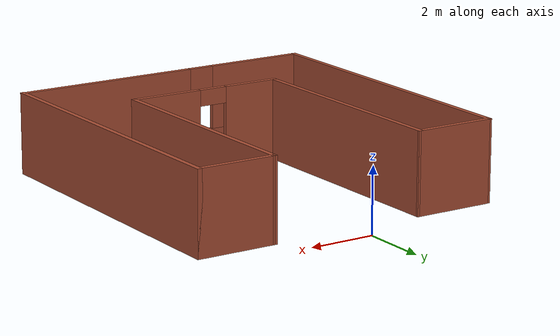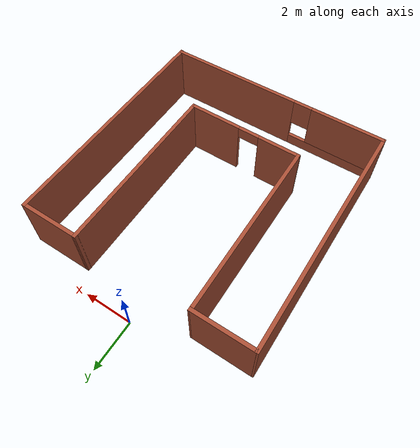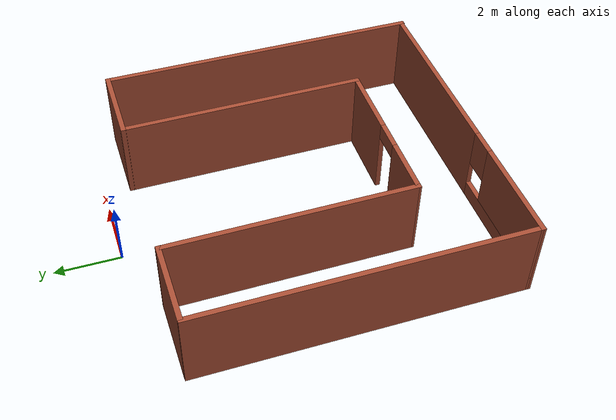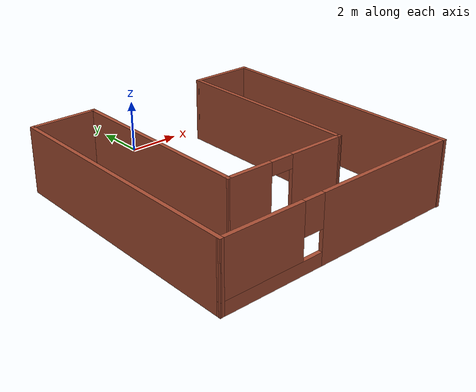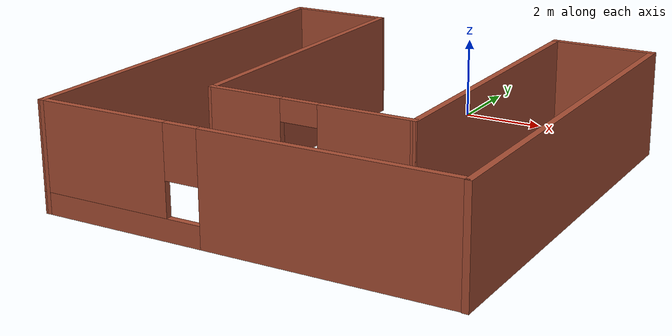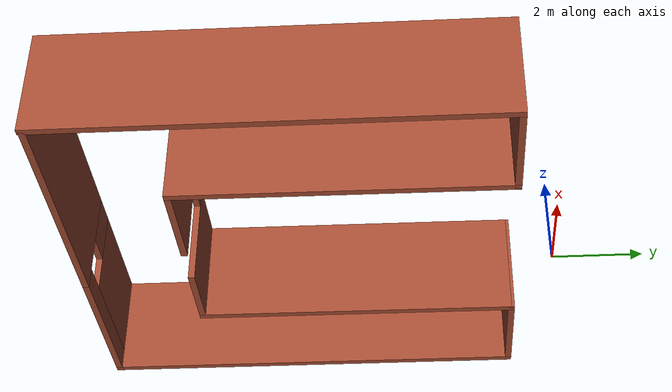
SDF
<?xml version='1.0'?>
<sdf version='1.6'>
  <model name='Building'>
    <pose frame=''>0.218497 -5.75038 0 0 -0 0</pose>
    <link name='Wall_0'>
      <collision name='Wall_0_Collision'>
        <geometry>
          <box>
            <size>2.5 0.15 2.5</size>
          </box>
        </geometry>
        <pose frame=''>0 0 1.25 0 -0 0</pose>
      </collision>
      <visual name='Wall_0_Visual'>
        <pose frame=''>0 0 1.25 0 -0 0</pose>
        <geometry>
          <box>
            <size>2.5 0.15 2.5</size>
          </box>
        </geometry>
        <material>
          <script>
            <uri>file://media/materials/scripts/gazebo.material</uri>
            <name>Gazebo/Bricks</name>
          </script>
          <ambient>1 1 1 1</ambient>
        </material>
        <meta>
          <layer>0</layer>
        </meta>
      </visual>
      <pose frame=''>-3.5735 4.94038 0 0 -0 0</pose>
    </link>
    <link name='Wall_1'>
      <collision name='Wall_1_Collision'>
        <geometry>
          <box>
            <size>7.5 0.15 2.5</size>
          </box>
        </geometry>
        <pose frame=''>0 0 1.25 0 -0 0</pose>
      </collision>
      <visual name='Wall_1_Visual'>
        <pose frame=''>0 0 1.25 0 -0 0</pose>
        <geometry>
          <box>
            <size>7.5 0.15 2.5</size>
          </box>
        </geometry>
        <material>
          <script>
            <uri>file://media/materials/scripts/gazebo.material</uri>
            <name>Gazebo/Bricks</name>
          </script>
          <ambient>0.760784 0.662745 0.627451 1</ambient>
        </material>
        <meta>
          <layer>0</layer>
        </meta>
      </visual>
      <pose frame=''>-2.3855 1.26538 0 0 0 -1.56726</pose>
    </link>
    <link name='Wall_16'>
      <pose frame=''>-0.028466 -4.91662 0 0 -0 3.14159</pose>
      <visual name='Wall_16_Visual_0'>
        <pose frame=''>-1.99596 0 1.25 0 -0 0</pose>
        <geometry>
          <box>
            <size>5.75809 0.15 2.5</size>
          </box>
        </geometry>
        <material>
          <script>
            <uri>file://media/materials/scripts/gazebo.material</uri>
            <name>Gazebo/Bricks</name>
          </script>
          <ambient>0.760784 0.662745 0.627451 1</ambient>
        </material>
        <meta>
          <layer>0</layer>
        </meta>
      </visual>
      <collision name='Wall_16_Collision_0'>
        <geometry>
          <box>
            <size>5.75809 0.15 2.5</size>
          </box>
        </geometry>
        <pose frame=''>-1.99596 0 1.25 0 -0 0</pose>
      </collision>
      <visual name='Wall_16_Visual_1'>
        <pose frame=''>2.87904 0 0.25 0 -0 0</pose>
        <geometry>
          <box>
            <size>3.99191 0.15 0.5</size>
          </box>
        </geometry>
        <material>
          <script>
            <uri>file://media/materials/scripts/gazebo.material</uri>
            <name>Gazebo/Bricks</name>
          </script>
          <ambient>0.760784 0.662745 0.627451 1</ambient>
        </material>
        <meta>
          <layer>0</layer>
        </meta>
      </visual>
      <collision name='Wall_16_Collision_1'>
        <geometry>
          <box>
            <size>3.99191 0.15 0.5</size>
          </box>
        </geometry>
        <pose frame=''>2.87904 0 0.25 0 -0 0</pose>
      </collision>
      <visual name='Wall_16_Visual_2'>
        <pose frame=''>3.27904 0 1.5 0 -0 0</pose>
        <geometry>
          <box>
            <size>3.19191 0.15 2</size>
          </box>
        </geometry>
        <material>
          <script>
            <uri>file://media/materials/scripts/gazebo.material</uri>
            <name>Gazebo/Bricks</name>
          </script>
          <ambient>0.760784 0.662745 0.627451 1</ambient>
        </material>
        <meta>
          <layer>0</layer>
        </meta>
      </visual>
      <collision name='Wall_16_Collision_2'>
        <geometry>
          <box>
            <size>3.19191 0.15 2</size>
          </box>
        </geometry>
        <pose frame=''>3.27904 0 1.5 0 -0 0</pose>
      </collision>
      <visual name='Wall_16_Visual_3'>
        <pose frame=''>1.28309 0 1.9 0 -0 0</pose>
        <geometry>
          <box>
            <size>0.8 0.15 1.2</size>
          </box>
        </geometry>
        <material>
          <script>
            <uri>file://media/materials/scripts/gazebo.material</uri>
            <name>Gazebo/Bricks</name>
          </script>
          <ambient>0.760784 0.662745 0.627451 1</ambient>
        </material>
        <meta>
          <layer>0</layer>
        </meta>
      </visual>
      <collision name='Wall_16_Collision_3'>
        <geometry>
          <box>
            <size>0.8 0.15 1.2</size>
          </box>
        </geometry>
        <pose frame=''>1.28309 0 1.9 0 -0 0</pose>
      </collision>
    </link>
    <link name='Wall_2'>
      <pose frame=''>0.039503 -2.42712 0 0 0 -0.007255</pose>
      <visual name='Wall_2_Visual_0'>
        <pose frame=''>-1.57978 0 1.25 0 -0 0</pose>
        <geometry>
          <box>
            <size>1.81451 0.15 2.5</size>
          </box>
        </geometry>
        <material>
          <script>
            <uri>file://media/materials/scripts/gazebo.material</uri>
            <name>Gazebo/Bricks</name>
          </script>
          <ambient>0.760784 0.662745 0.627451 1</ambient>
        </material>
        <meta>
          <layer>0</layer>
        </meta>
      </visual>
      <collision name='Wall_2_Collision_0'>
        <geometry>
          <box>
            <size>1.81451 0.15 2.5</size>
          </box>
        </geometry>
        <pose frame=''>-1.57978 0 1.25 0 -0 0</pose>
      </collision>
      <visual name='Wall_2_Visual_1'>
        <pose frame=''>1.35726 0 1.25 0 -0 0</pose>
        <geometry>
          <box>
            <size>2.25957 0.15 2.5</size>
          </box>
        </geometry>
        <material>
          <script>
            <uri>file://media/materials/scripts/gazebo.material</uri>
            <name>Gazebo/Bricks</name>
          </script>
          <ambient>0.760784 0.662745 0.627451 1</ambient>
        </material>
        <meta>
          <layer>0</layer>
        </meta>
      </visual>
      <collision name='Wall_2_Collision_1'>
        <geometry>
          <box>
            <size>2.25957 0.15 2.5</size>
          </box>
        </geometry>
        <pose frame=''>1.35726 0 1.25 0 -0 0</pose>
      </collision>
      <visual name='Wall_2_Visual_2'>
        <pose frame=''>-0.222528 0 2.25 0 -0 0</pose>
        <geometry>
          <box>
            <size>0.9 0.15 0.5</size>
          </box>
        </geometry>
        <material>
          <script>
            <uri>file://media/materials/scripts/gazebo.material</uri>
            <name>Gazebo/Bricks</name>
          </script>
          <ambient>0.760784 0.662745 0.627451 1</ambient>
        </material>
        <meta>
          <layer>0</layer>
        </meta>
      </visual>
      <collision name='Wall_2_Collision_2'>
        <geometry>
          <box>
            <size>0.9 0.15 0.5</size>
          </box>
        </geometry>
        <pose frame=''>-0.222528 0 2.25 0 -0 0</pose>
      </collision>
    </link>
    <link name='Wall_3'>
      <collision name='Wall_3_Collision'>
        <geometry>
          <box>
            <size>7.5 0.15 2.5</size>
          </box>
        </geometry>
        <pose frame=''>0 0 1.25 0 -0 0</pose>
      </collision>
      <visual name='Wall_3_Visual'>
        <pose frame=''>0 0 1.25 0 -0 0</pose>
        <geometry>
          <box>
            <size>7.5 0.15 2.5</size>
          </box>
        </geometry>
        <material>
          <script>
            <uri>file://media/materials/scripts/gazebo.material</uri>
            <name>Gazebo/Bricks</name>
          </script>
          <ambient>0.760784 0.662745 0.627451 1</ambient>
        </material>
        <meta>
          <layer>0</layer>
        </meta>
      </visual>
      <pose frame=''>2.46459 1.23038 0 0 -0 1.57436</pose>
    </link>
    <link name='Wall_4'>
      <collision name='Wall_4_Collision'>
        <geometry>
          <box>
            <size>2.52653 0.15 2.5</size>
          </box>
        </geometry>
        <pose frame=''>0 0 1.25 0 -0 0</pose>
      </collision>
      <visual name='Wall_4_Visual'>
        <pose frame=''>0 0 1.25 0 -0 0</pose>
        <geometry>
          <box>
            <size>2.52653 0.15 2.5</size>
          </box>
        </geometry>
        <material>
          <script>
            <uri>file://media/materials/scripts/gazebo.material</uri>
            <name>Gazebo/Bricks</name>
          </script>
          <ambient>0.760784 0.662745 0.627451 1</ambient>
        </material>
        <meta>
          <layer>0</layer>
        </meta>
      </visual>
      <pose frame=''>3.64 4.90538 0 0 -0 0</pose>
    </link>
    <link name='Wall_5'>
      <collision name='Wall_5_Collision'>
        <geometry>
          <box>
            <size>9.996 0.15 2.5</size>
          </box>
        </geometry>
        <pose frame=''>0 0 1.25 0 -0 0</pose>
      </collision>
      <visual name='Wall_5_Visual'>
        <pose frame=''>0 0 1.25 0 -0 0</pose>
        <geometry>
          <box>
            <size>9.996 0.15 2.5</size>
          </box>
        </geometry>
        <material>
          <script>
            <uri>file://media/materials/scripts/gazebo.material</uri>
            <name>Gazebo/Bricks</name>
          </script>
          <ambient>0.760784 0.662745 0.627451 1</ambient>
        </material>
        <meta>
          <layer>0</layer>
        </meta>
      </visual>
      <pose frame=''>4.8285 -0.017621 0 0 0 -1.5708</pose>
    </link>
    <link name='Wall_7'>
      <collision name='Wall_7_Collision'>
        <geometry>
          <box>
            <size>10 0.15 2.5</size>
          </box>
        </geometry>
        <pose frame=''>0 0 1.25 0 -0 0</pose>
      </collision>
      <visual name='Wall_7_Visual'>
        <pose frame=''>0 0 1.25 0 -0 0</pose>
        <geometry>
          <box>
            <size>10 0.15 2.5</size>
          </box>
        </geometry>
        <material>
          <script>
            <uri>file://media/materials/scripts/gazebo.material</uri>
            <name>Gazebo/Bricks</name>
          </script>
          <ambient>0.760784 0.662745 0.627451 1</ambient>
        </material>
        <meta>
          <layer>0</layer>
        </meta>
      </visual>
      <pose frame=''>-4.82597 0.008379 0 0 -0 1.57029</pose>
    </link>
    <static>1</static>
  </model>
</sdf>
